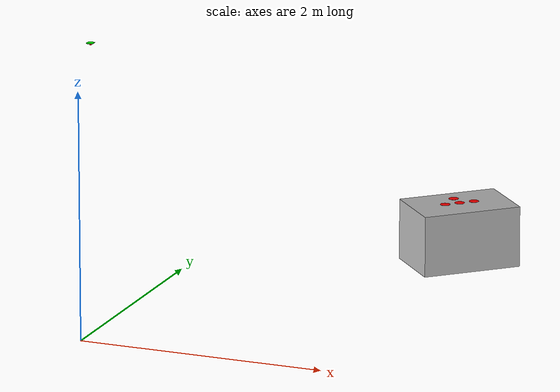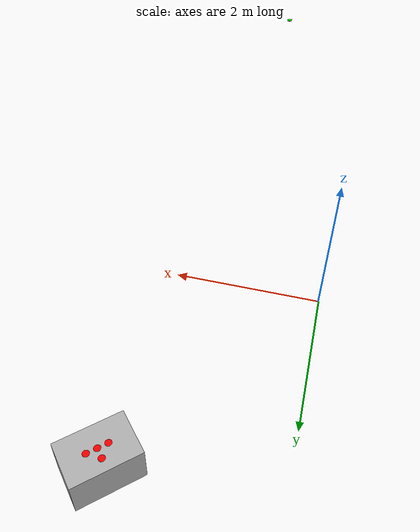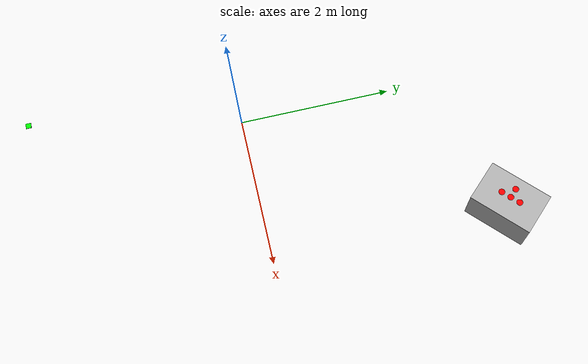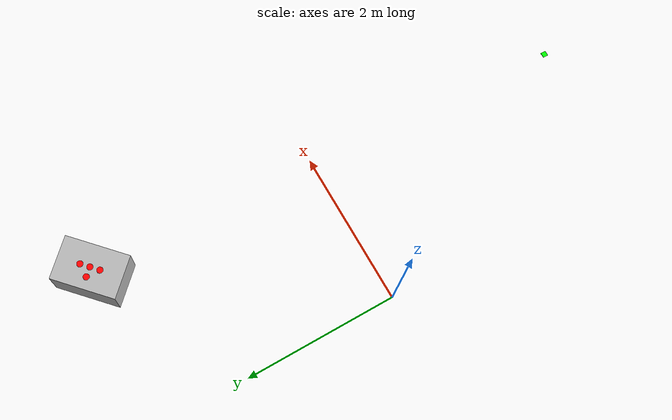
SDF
<?xml version="1.0" ?>
<sdf version="1.5">
  <world name="default">
    <!-- A global light source -->

    <include>
      <uri>model://sun</uri>
    </include>

    <include>
      <uri>model://pixy_cam</uri>
    </include>

    <include>
      <uri>model://land_target</uri>
    </include>

  </world>
</sdf>

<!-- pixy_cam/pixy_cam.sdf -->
<sdf version="1.4">
  <model name="pixy_camera">
    <pose>1.0 -2.0 3.0 0 1.57 0</pose>
    <static>true</static>
    <link name="platine">
      <inertial>
        <mass>0.01</mass>
        <inertia>
          <ixx>4.15e-6</ixx>
          <ixy>0</ixy>
          <ixz>0</ixz>
          <iyy>2.407e-6</iyy>
          <iyz>0</iyz>
          <izz>2.407e-6</izz>
        </inertia>
      </inertial>

      <visual name='platine'>
        <geometry>
          <box>
            <size>0.05 0.05 0.005</size>
          </box>
        </geometry>
        <material>
          <shader type='pixel'>
            <normal_map>__default__</normal_map>
          </shader>
          <ambient>1 1 1 1</ambient>
          <diffuse>0 1 0 0</diffuse>
          <specular>0 1 0 0</specular>
          <emissive>0 1 0 0</emissive>
          <script>
            <name>ModelPreview_1::platine::platine_MATERIAL_</name>
          </script>
        </material>
        <pose frame=''>0 0 0 0 1.57079 0</pose>
        <cast_shadows>1</cast_shadows>
        <transparency>0</transparency>
      </visual>

      <visual name='lens'>
        <pose frame=''>0.0075 0 0 0 1.57079 0</pose>
        <geometry>
          <cylinder>
            <radius>0.007</radius>
            <length>0.015</length>
          </cylinder>
        </geometry>
        <material>
          <shader type='pixel'>
            <normal_map>__default__</normal_map>
          </shader>
          <ambient>1 0 0 0</ambient>
          <diffuse>1 0 0 0</diffuse>
          <specular>1 0 0 0</specular>
          <emissive>1 0 0 0</emissive>
          <script>
            <name>ModelPreview_1::link::left_pt_visual_MATERIAL_</name>
          </script>
        </material>
        <cast_shadows>1</cast_shadows>
        <transparency>0</transparency>
      </visual>

  	  <sensor name="pixy" type="camera">
        <camera>
          <horizontal_fov>0.9136</horizontal_fov>

          <image>
            <width>318</width>
            <height>198</height>
          </image>

          <clip>
            <near>0.1</near>
            <far>100</far>
          </clip>

          <noise>
            <type>gaussian</type>
            <mean>0.0</mean>
            <stddev>0.01</stddev>
          </noise>

        </camera>
        <plugin name="PixyCameraPlugin" filename="libgazebo_pixy_cam_plugin.so"/>
        <always_on>1</always_on>
        <update_rate>10</update_rate>
        <visualize>1</visualize>
      </sensor>

    </link>
  </model>
</sdf>

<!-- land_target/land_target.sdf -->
<sdf version="1.4">
<model name="land_target">
  <pose>2 3 0.25 0 0 0.75</pose>
  <static>true</static>
    <link name="link">

      <collision name="collision">
        <geometry>
          <box>
            <size>0.82 0.55 0.5</size>
          </box>
        </geometry>
      </collision>
      <visual name="visual">
        <geometry>
          <box>
            <size>0.82 0.55 0.5</size>
          </box>
        </geometry>
      </visual>

      <visual name='middle_pt_visual'>
        <pose frame=''>0 0 0.251 0 -0 0</pose>
        <geometry>
          <cylinder>
            <radius>0.04</radius>
            <length>0.001</length>
          </cylinder>
        </geometry>
        <material>
          <shader type='pixel'>
            <normal_map>__default__</normal_map>
          </shader>
          <ambient>1 0 0 0</ambient>
          <diffuse>1 0 0 0</diffuse>
          <specular>1 0 0 0</specular>
          <emissive>1 0 0 0</emissive>
          <script>
            <name>ModelPreview_1::link::left_pt_visual_MATERIAL_</name>
          </script>
        </material>
        <cast_shadows>1</cast_shadows>
        <transparency>0</transparency>
      </visual>

      <visual name='right_pt_visual'>
        <pose frame=''>0.125 0 0.251 0 -0 0</pose>
        <geometry>
          <cylinder>
            <radius>0.04</radius>
            <length>0.001</length>
          </cylinder>
        </geometry>
        <material>
          <shader type='pixel'>
            <normal_map>__default__</normal_map>
          </shader>
          <ambient>1 0 0 0</ambient>
          <diffuse>1 0 0 0</diffuse>
          <specular>1 0 0 0</specular>
          <emissive>1 0 0 0</emissive>
          <script>
            <name>ModelPreview_1::link::left_pt_visual_MATERIAL_</name>
          </script>
        </material>
        <cast_shadows>1</cast_shadows>
        <transparency>0</transparency>
      </visual>

      <visual name='left_pt_visual'>
        <pose frame=''>-0.125 0 0.251 0 -0 0</pose>
        <geometry>
          <cylinder>
            <radius>0.04</radius>
            <length>0.001</length>
          </cylinder>
        </geometry>
        <material>
          <shader type='pixel'>
            <normal_map>__default__</normal_map>
          </shader>
          <ambient>1 0 0 0</ambient>
          <diffuse>1 0 0 0</diffuse>
          <specular>1 0 0 0</specular>
          <emissive>1 0 0 0</emissive>
          <script>
            <name>ModelPreview_1::link::left_pt_visual_MATERIAL_</name>
          </script>
        </material>
        <cast_shadows>1</cast_shadows>
        <transparency>0</transparency>
      </visual>

      <visual name='front_pt_visual'>
        <pose frame=''>0 0.125 0.251 0 -0 0</pose>
        <geometry>
          <cylinder>
            <radius>0.04</radius>
            <length>0.001</length>
          </cylinder>
        </geometry>
        <material>
          <shader type='pixel'>
            <normal_map>__default__</normal_map>
          </shader>
          <ambient>1 0 0 0</ambient>
          <diffuse>1 0 0 0</diffuse>
          <specular>1 0 0 0</specular>
          <emissive>1 0 0 0</emissive>
          <script>
            <name>ModelPreview_1::link::left_pt_visual_MATERIAL_</name>
          </script>
        </material>
        <cast_shadows>1</cast_shadows>
        <transparency>0</transparency>
      </visual>

    </link>
  </model>
</sdf>
